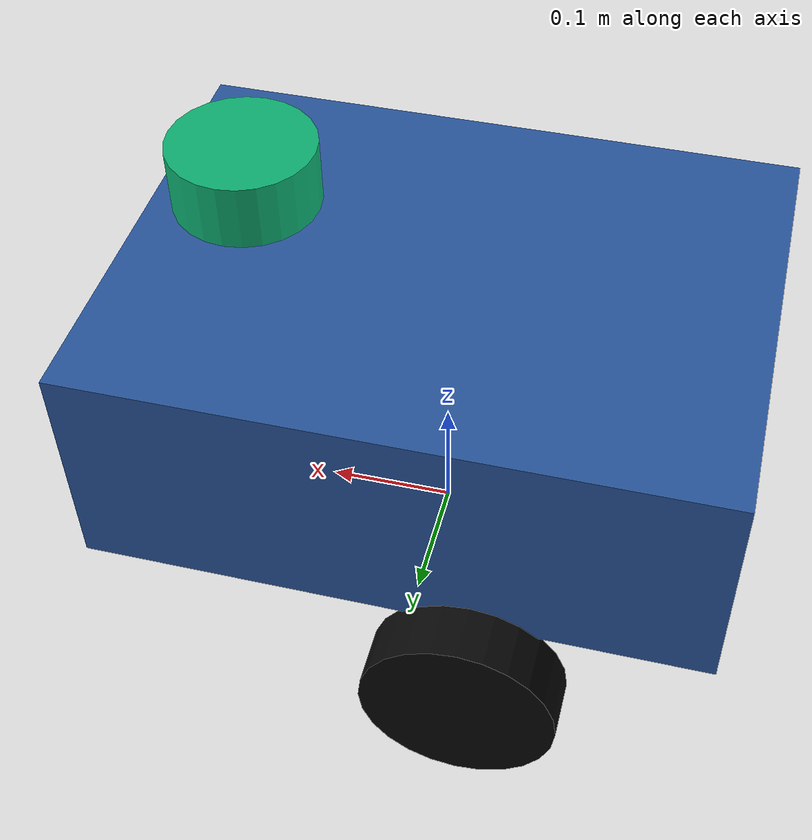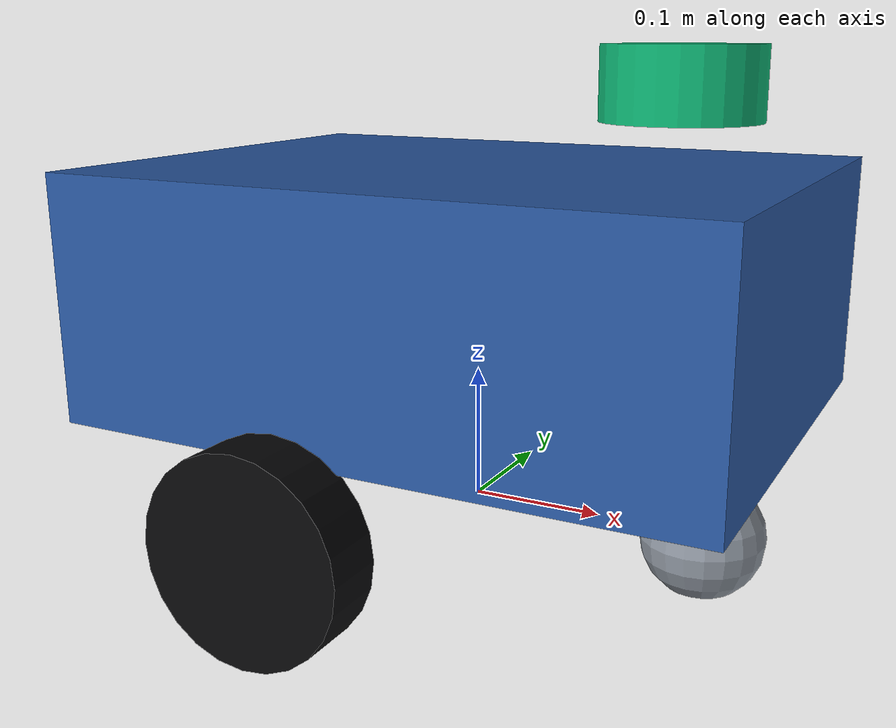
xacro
<?xml version="1.0"?>
<robot name="mock_delivery_robot" xmlns:xacro="http://www.ros.org/wiki/xacro">
  <xacro:property name="base_length" value="0.48"/>
  <xacro:property name="base_width" value="0.36"/>
  <xacro:property name="base_height" value="0.18"/>
  <xacro:property name="wheel_radius" value="0.075"/>
  <xacro:property name="wheel_width" value="0.045"/>
  <xacro:property name="wheel_separation" value="0.40"/>
  <xacro:property name="wheel_x" value="-0.06"/>
  <xacro:property name="wheel_z" value="-0.055"/>

  <material name="body_blue">
    <color rgba="0.16 0.34 0.62 1.0"/>
  </material>
  <material name="wheel_dark">
    <color rgba="0.03 0.03 0.035 1.0"/>
  </material>
  <material name="lidar_green">
    <color rgba="0.05 0.70 0.45 1.0"/>
  </material>
  <material name="caster_gray">
    <color rgba="0.55 0.58 0.62 1.0"/>
  </material>

  <xacro:macro name="box_inertia" params="mass x y z">
    <inertial>
      <mass value="${mass}"/>
      <origin xyz="0 0 0" rpy="0 0 0"/>
      <inertia
        ixx="${mass * (y * y + z * z) / 12.0}"
        ixy="0.0"
        ixz="0.0"
        iyy="${mass * (x * x + z * z) / 12.0}"
        iyz="0.0"
        izz="${mass * (x * x + y * y) / 12.0}"/>
    </inertial>
  </xacro:macro>

  <xacro:macro name="cylinder_inertia" params="mass radius length axis">
    <inertial>
      <mass value="${mass}"/>
      <origin xyz="0 0 0" rpy="0 0 0"/>
      <xacro:if value="${axis == 'y'}">
        <inertia
          ixx="${mass * (3.0 * radius * radius + length * length) / 12.0}"
          ixy="0.0"
          ixz="0.0"
          iyy="${0.5 * mass * radius * radius}"
          iyz="0.0"
          izz="${mass * (3.0 * radius * radius + length * length) / 12.0}"/>
      </xacro:if>
      <xacro:unless value="${axis == 'y'}">
        <inertia
          ixx="${mass * (3.0 * radius * radius + length * length) / 12.0}"
          ixy="0.0"
          ixz="0.0"
          iyy="${mass * (3.0 * radius * radius + length * length) / 12.0}"
          iyz="0.0"
          izz="${0.5 * mass * radius * radius}"/>
      </xacro:unless>
    </inertial>
  </xacro:macro>

  <link name="base_footprint"/>

  <joint name="base_footprint_joint" type="fixed">
    <parent link="base_footprint"/>
    <child link="base_link"/>
    <origin xyz="0 0 ${wheel_radius}" rpy="0 0 0"/>
  </joint>

  <link name="base_link">
    <visual>
      <origin xyz="0 0 ${base_height / 2.0}" rpy="0 0 0"/>
      <geometry>
        <box size="${base_length} ${base_width} ${base_height}"/>
      </geometry>
      <material name="body_blue"/>
    </visual>
    <collision>
      <origin xyz="0 0 ${base_height / 2.0}" rpy="0 0 0"/>
      <geometry>
        <box size="${base_length} ${base_width} ${base_height}"/>
      </geometry>
    </collision>
    <xacro:box_inertia mass="8.0" x="${base_length}" y="${base_width}" z="${base_height}"/>
  </link>

  <link name="left_wheel_link">
    <visual>
      <origin xyz="0 0 0" rpy="1.57079632679 0 0"/>
      <geometry>
        <cylinder radius="${wheel_radius}" length="${wheel_width}"/>
      </geometry>
      <material name="wheel_dark"/>
    </visual>
    <collision>
      <origin xyz="0 0 0" rpy="1.57079632679 0 0"/>
      <geometry>
        <cylinder radius="${wheel_radius}" length="${wheel_width}"/>
      </geometry>
    </collision>
    <xacro:cylinder_inertia mass="0.35" radius="${wheel_radius}" length="${wheel_width}" axis="y"/>
  </link>

  <joint name="left_wheel_joint" type="continuous">
    <parent link="base_link"/>
    <child link="left_wheel_link"/>
    <origin xyz="${wheel_x} ${wheel_separation / 2.0} ${wheel_z}" rpy="0 0 0"/>
    <axis xyz="0 1 0"/>
  </joint>

  <link name="right_wheel_link">
    <visual>
      <origin xyz="0 0 0" rpy="1.57079632679 0 0"/>
      <geometry>
        <cylinder radius="${wheel_radius}" length="${wheel_width}"/>
      </geometry>
      <material name="wheel_dark"/>
    </visual>
    <collision>
      <origin xyz="0 0 0" rpy="1.57079632679 0 0"/>
      <geometry>
        <cylinder radius="${wheel_radius}" length="${wheel_width}"/>
      </geometry>
    </collision>
    <xacro:cylinder_inertia mass="0.35" radius="${wheel_radius}" length="${wheel_width}" axis="y"/>
  </link>

  <joint name="right_wheel_joint" type="continuous">
    <parent link="base_link"/>
    <child link="right_wheel_link"/>
    <origin xyz="${wheel_x} ${-wheel_separation / 2.0} ${wheel_z}" rpy="0 0 0"/>
    <axis xyz="0 1 0"/>
  </joint>

  <link name="caster_wheel_link">
    <visual>
      <origin xyz="0 0 0" rpy="0 0 0"/>
      <geometry>
        <sphere radius="0.045"/>
      </geometry>
      <material name="caster_gray"/>
    </visual>
    <collision>
      <origin xyz="0 0 0" rpy="0 0 0"/>
      <geometry>
        <sphere radius="0.045"/>
      </geometry>
    </collision>
    <inertial>
      <mass value="0.15"/>
      <origin xyz="0 0 0" rpy="0 0 0"/>
      <inertia ixx="0.0001" ixy="0.0" ixz="0.0" iyy="0.0001" iyz="0.0" izz="0.0001"/>
    </inertial>
  </link>

  <joint name="caster_wheel_joint" type="fixed">
    <parent link="base_link"/>
    <child link="caster_wheel_link"/>
    <origin xyz="0.18 0 ${wheel_z - 0.02}" rpy="0 0 0"/>
  </joint>

  <link name="lidar_link">
    <visual>
      <origin xyz="0 0 0" rpy="0 0 0"/>
      <geometry>
        <cylinder radius="0.055" length="0.05"/>
      </geometry>
      <material name="lidar_green"/>
    </visual>
    <collision>
      <origin xyz="0 0 0" rpy="0 0 0"/>
      <geometry>
        <cylinder radius="0.055" length="0.05"/>
      </geometry>
    </collision>
    <xacro:cylinder_inertia mass="0.2" radius="0.055" length="0.05" axis="z"/>
  </link>

  <joint name="lidar_joint" type="fixed">
    <parent link="base_link"/>
    <child link="lidar_link"/>
    <origin xyz="0.15 0 ${base_height + 0.06}" rpy="0 0 0"/>
  </joint>

  <gazebo reference="base_link">
    <material>Gazebo/Blue</material>
  </gazebo>
  <gazebo reference="left_wheel_link">
    <material>Gazebo/Black</material>
  </gazebo>
  <gazebo reference="right_wheel_link">
    <material>Gazebo/Black</material>
  </gazebo>

  <gazebo>
    <plugin filename="gz-sim-diff-drive-system" name="gz::sim::systems::DiffDrive">
      <left_joint>left_wheel_joint</left_joint>
      <right_joint>right_wheel_joint</right_joint>
      <wheel_separation>${wheel_separation}</wheel_separation>
      <wheel_radius>${wheel_radius}</wheel_radius>
      <topic>/cmd_vel</topic>
      <odom_topic>/odom</odom_topic>
      <frame_id>odom</frame_id>
      <child_frame_id>base_footprint</child_frame_id>
      <odom_publish_frequency>30</odom_publish_frequency>
      <tf_topic>/tf</tf_topic>
    </plugin>
  </gazebo>

  <gazebo reference="lidar_link">
    <sensor name="front_lidar" type="gpu_lidar">
      <always_on>true</always_on>
      <visualize>false</visualize>
      <update_rate>10</update_rate>
      <topic>/scan</topic>
      <ray>
        <scan>
          <horizontal>
            <samples>181</samples>
            <resolution>1</resolution>
            <min_angle>-2.35619</min_angle>
            <max_angle>2.35619</max_angle>
          </horizontal>
        </scan>
        <range>
          <min>0.08</min>
          <max>8.0</max>
          <resolution>0.02</resolution>
        </range>
        <noise>
          <type>gaussian</type>
          <mean>0.0</mean>
          <stddev>0.01</stddev>
        </noise>
      </ray>
    </sensor>
  </gazebo>
</robot>
